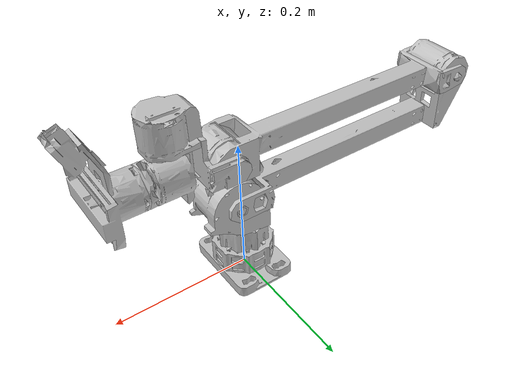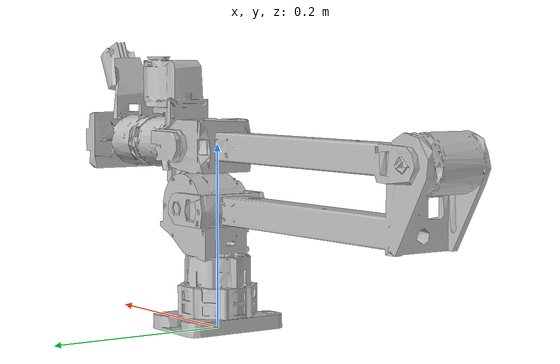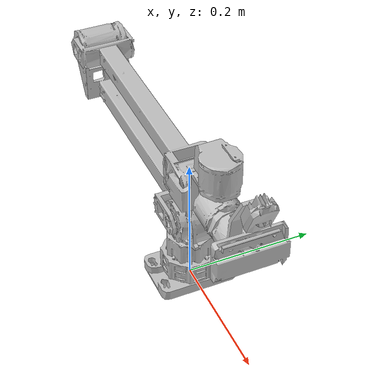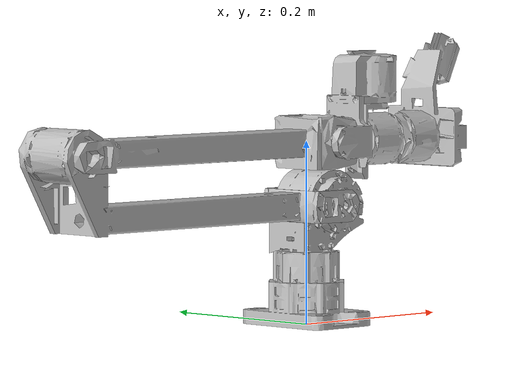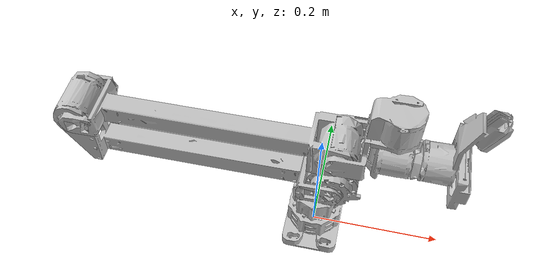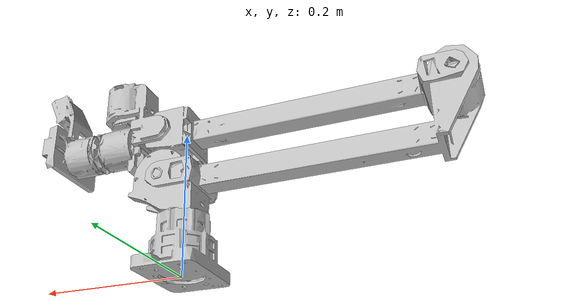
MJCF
<mujoco model="big-yam-urdf">
    <compiler angle="radian" meshdir="assets"/>
    <size njmax="500" nconmax="100" />
    <asset>
        <mesh name="joint1" file="joint1.STL" />
        <mesh name="joint2_link" file="joint2_link.STL" />
        <mesh name="joint3_link" file="joint3_link.STL" />
        <mesh name="joint4_link" file="joint4_link.STL" />
        <mesh name="joint5_link" file="joint5_link.STL" />
        <mesh name="joint6_link" file="joint6_link.STL" />
        <mesh name="gripper_link" file="gripper_link.STL" />
    </asset>
    <worldbody>
        <!-- base_link -->
        <body name="base_link">
            <inertial pos="-5.226e-06 -2.456e-05 0.0359386" mass="1.11523" diaginertia="0.00111043 0.000762866 0.000667469" />
            <geom type="mesh" rgba="0.752941 0.752941 0.752941 1" mesh="joint1" euler="0 0 -1.5708" />
            <!-- link_1 -->
            <body name="link_1" pos="0 0 0.07735" euler="0 0 -1.5708">
                <inertial pos="0.00262043 0.0186981 0.0476979" quat="0.477329 0.878707 -0.00124457 0.00543518" mass="0.844869" diaginertia="0.00057425 0.000428775 0.000395685" />
                <joint name="joint1" pos="0 0 0" axis="0 0 1" range="-2.61799 3.05433" actuatorfrcrange="-10 10"/>
                <geom type="mesh" rgba="0.752941 0.752941 0.752941 1" mesh="joint2_link" />
                <!-- link_2 -->
                <body name="link_2" pos="0 0.021912 0.053202">
                    <inertial pos="0.00386212 -0.27688 0.0327451" quat="0.711298 0.702816 -0.00721743 0.00719254" mass="0.87676" diaginertia="0.00182975 0.00177963 0.000341322" />
                    <joint name="joint2" pos="0 0 0" axis="1 0 0" range="-0.1 3.66" actuatorfrcrange="-10 10"/>
                    <geom type="mesh" rgba="0.752941 0.752941 0.752941 1" mesh="joint3_link" />
                    <!-- link_3 -->
                    <body name="link_3" pos="0 -0.3787 0.068">
                        <inertial pos="0.00320447 0.26687 -5.98855e-06" quat="0.707044 0.707124 0.00347899 -0.00727348" mass="0.849152" diaginertia="0.00176365 0.00172838 0.000252411" />
                        <joint name="joint3" pos="0 0 0" axis="1 0 0" range="0 3.66519" actuatorfrcrange="-10 10"/>
                        <geom type="mesh" rgba="0.752941 0.752941 0.752941 1" mesh="joint4_link" />
                        <!-- link_4 -->
                        <body name="link_4" pos="0 0.38198 0">
                            <inertial pos="-0.000204601 0.0595323 0.0500375" quat="0.174559 0.714795 -0.223159 0.639373" mass="0.465659" diaginertia="0.00021982 0.000163919 0.000126974" />
                            <joint name="joint4" pos="0 0 0" axis="1 0 0" range="-1.5708 1.5708" actuatorfrcrange="-10 10"/>
                            <geom type="mesh" rgba="0.752941 0.752941 0.752941 1" mesh="joint5_link" />
                            <!-- link_5 -->
                            <body name="link_5" pos="0 0.074 0.0455">
                                <inertial pos="-4.72877e-05 -0.00118652 -0.0426116" quat="0.706401 -0.0368625 0.0458386 0.705363" mass="0.382514" diaginertia="0.000149214 9.5343e-05 8.35947e-05" />
                                <joint name="joint5" pos="0 0 0" axis="0 0 -1" range="-1.5708 1.5708" actuatorfrcrange="-10 10"/>
                                <geom type="mesh" rgba="0.752941 0.752941 0.752941 1" mesh="joint6_link" />
                                <!-- link_6 -->
                                <body name="link_6" pos="0 0.0235 -0.0455">
                                    <inertial pos="0.000137378 0.0463253 0.00816867" quat="0.512468 0.488154 0.508448 0.490473" mass="0.567147" diaginertia="0.000305066 0.000202878 0.00012419" />
                                    <joint name="joint6" pos="0 0 0" axis="0 1 0" range="-3.14 3.14" actuatorfrcrange="-10 10"/>
                                    <geom type="mesh" rgba="0.752941 0.752941 0.752941 1" mesh="gripper_link" />
                                    <!-- eef_link -->
                                    <body name="eef_link" euler="1.5708 0 3.14159">
                                        <site name="eef_site" size="0.01"/>
                                    </body>
                                </body>
                            </body>
                        </body>
                    </body>
                </body>
            </body>
        </body>
    </worldbody>
</mujoco>
